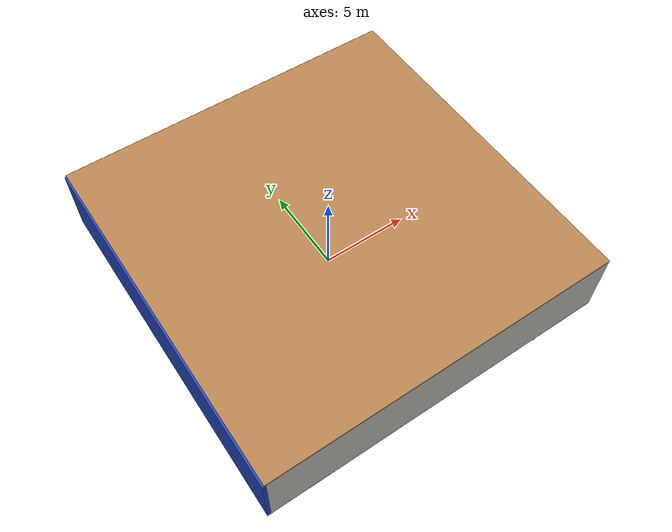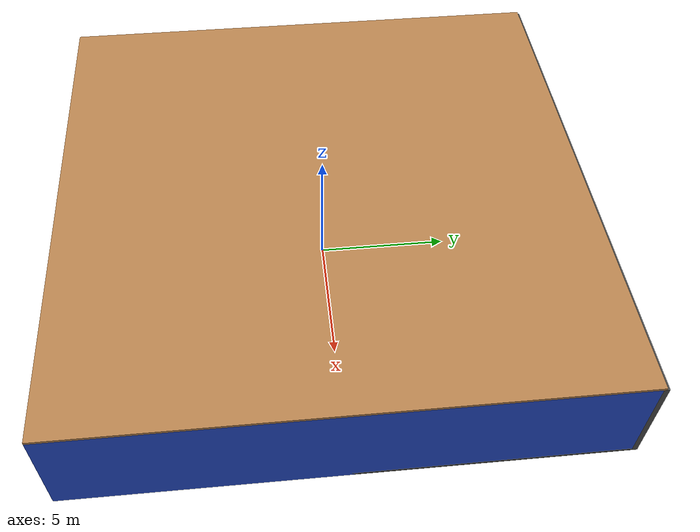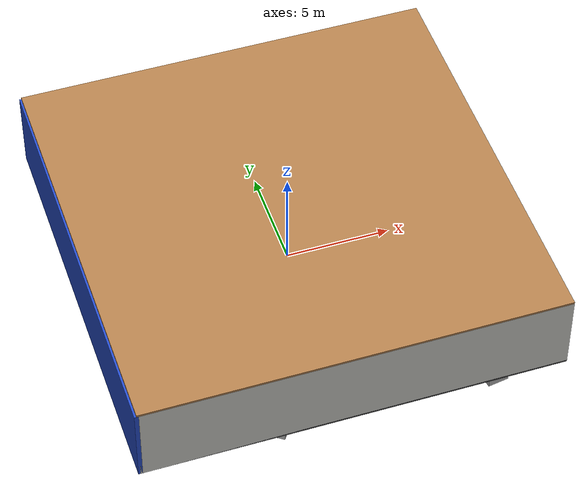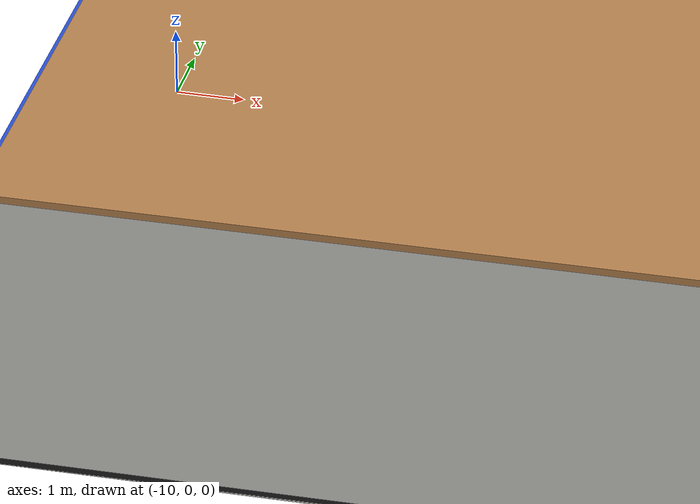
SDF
<sdf version="1.4">
 <world name="default">
  <physics type="ode">
   <max_step_size>0.001</max_step_size>
   <real_time_factor>1</real_time_factor>
   <real_time_update_rate>1000</real_time_update_rate>
   <gravity>0 0 -9.8</gravity>
  </physics>
  <scene><ambient>0.4 0.4 0.4 1</ambient><background>0.7 0.7 0.7 1</background><shadows>1</shadows></scene>
  <model name="Surrounding">
   <static>1</static>
   <link name="Ceiling">
    <collision name="Ceiling_Collision"><geometry><box><size>20 20 0.1</size></box></geometry></collision>
    <visual name="Ceiling_Visual">
     <geometry><box><size>20 20 0.1</size></box></geometry>
     <material>
      <script><uri>file://media/materials/scripts/gazebo.material</uri><name>Gazebo/Wood</name></script>
     </material>
    </visual>
    <pose>0 0 4.05 0 0 0</pose>
   </link>
   <link name="Wall_South">
    <collision name="Wall_South_Collision">
     <geometry><box><size>20 0 4</size></box></geometry>
     <pose>0 0 2 0 -0 0</pose>
    </collision>
    <visual name="Wall_South_Visual">
     <pose>0 0 2 0 -0 0</pose>
     <geometry><box><size>20 0 4</size></box></geometry>
     <material>
      <script><uri>file://media/materials/scripts/gazebo.material</uri><name>Gazebo/CeilingTiled</name></script>
     </material>
    </visual>
    <velocity_decay><linear>0</linear><angular>0</angular></velocity_decay>
    <pose>0 -10 0 0 -0 0</pose>
   </link>
   <link name="Wall_East">
    <collision name="Wall_21_Collision">
     <geometry><box><size>20 0 4</size></box></geometry>
     <pose>0 0 2 0 -0 0</pose>
    </collision>
    <visual name="Wall_21_Visual">
     <pose>0 0 2 0 -0 0</pose>
     <geometry><box><size>20 0 4</size></box></geometry>
     <material>
      <script><uri>file://media/materials/scripts/gazebo.material</uri><name>Gazebo/BlueLaser</name></script>
     </material>
    </visual>
    <velocity_decay><linear>0</linear><angular>0</angular></velocity_decay>
    <pose>10 0 0 0 -0 1.5708</pose>
   </link>
   <link name="Wall_North">
    <collision name="Wall_22_Collision">
     <geometry><box><size>20 0.2 4</size></box></geometry>
     <pose>0 0 2 0 -0 0</pose>
    </collision>
    <visual name="Wall_22_Visual">
     <pose>0 0 2 0 -0 0</pose>
     <geometry><box><size>20 0.2 4</size></box></geometry>
     <material>
      <script><uri>file://media/materials/scripts/gazebo.material</uri><name>Gazebo/DarkGrey</name></script>
     </material>
    </visual>
    <velocity_decay><linear>0</linear><angular>0</angular></velocity_decay>
    <pose>0 10 0 0 -0 0</pose>
   </link>
   <link name="Wall_West">
    <collision name="Wall_23_Collision">
     <geometry><box><size>20 0.2 4</size></box></geometry>
     <pose>0 0 2 0 -0 0</pose>
    </collision>
    <visual name="Wall_23_Visual">
     <pose>0 0 2 0 -0 0</pose>
     <geometry><box><size>20 0.2 4</size></box></geometry>
     <material>
      <script><uri>file://media/materials/scripts/gazebo.material</uri><name>Gazebo/BlueGlow</name></script>
     </material>
    </visual>
    <velocity_decay><linear>0</linear><angular>0</angular></velocity_decay>
    <pose>-10 0 0 0 0 -1.5708</pose>
   </link>
   <link name="Ground_link">
    <collision name="collision">
     <pose>0 0 .05 0 -0 0</pose>
     <geometry><box><size>20 20 0.1</size></box></geometry>
    </collision>
    <visual name="visual">
     <pose>0 0 .05 0 -0 0</pose>
     <geometry><box><size>20 20 0.1</size></box></geometry>
     <material>
      <script><uri>file://media/materials/scripts/gazebo.material</uri><name>Gazebo/Black</name></script>
     </material>
    </visual>
   </link>
   <static>1</static>
  </model>
  <spherical_coordinates>
   <surface_model>EARTH_WGS84</surface_model>
   <latitude_deg>0</latitude_deg>
   <longitude_deg>0</longitude_deg>
   <elevation>0</elevation>
   <heading_deg>0</heading_deg>
  </spherical_coordinates>
  <light name="lightball_0" type="diffuse">
   <diffuse>0.8 0.8 0.8 1</diffuse>
   <specular>0.2 0.2 0.2 1</specular>
   <attenuation>
    <range>100</range>
    <constant>0.7</constant>
    <linear>0.01</linear>
    <quadratic>0.001</quadratic>
   </attenuation>
   <direction>-0.5 0.1 -0.9</direction>
   <pose>8.29386691217 4.37489185133 1.13629039176 0 0 0</pose>
  </light>
  <light name="lightball_1" type="diffuse">
   <diffuse>0.8 0.8 0.8 1</diffuse>
   <specular>0.2 0.2 0.2 1</specular>
   <attenuation>
    <range>100</range>
    <constant>0.7</constant>
    <linear>0.01</linear>
    <quadratic>0.001</quadratic>
   </attenuation>
   <direction>-0.5 0.1 -0.9</direction>
   <pose>-6.36479457825 9.16919219252 3.82519928825 0 0 0</pose>
  </light>
  <light name="lightball_2" type="diffuse">
   <diffuse>0.8 0.8 0.8 1</diffuse>
   <specular>0.2 0.2 0.2 1</specular>
   <attenuation>
    <range>100</range>
    <constant>0.7</constant>
    <linear>0.01</linear>
    <quadratic>0.001</quadratic>
   </attenuation>
   <direction>-0.5 0.1 -0.9</direction>
   <pose>7.76865479526 5.24415996833 3.71833451613 0 0 0</pose>
  </light>
  <light name="lightball_3" type="diffuse">
   <diffuse>0.8 0.8 0.8 1</diffuse>
   <specular>0.2 0.2 0.2 1</specular>
   <attenuation>
    <range>100</range>
    <constant>0.7</constant>
    <linear>0.01</linear>
    <quadratic>0.001</quadratic>
   </attenuation>
   <direction>-0.5 0.1 -0.9</direction>
   <pose>-1.41803783989 3.21400916785 2.90524240765 0 0 0</pose>
  </light>
  <light name="lightball_4" type="diffuse">
   <diffuse>0.8 0.8 0.8 1</diffuse>
   <specular>0.2 0.2 0.2 1</specular>
   <attenuation>
    <range>100</range>
    <constant>0.7</constant>
    <linear>0.01</linear>
    <quadratic>0.001</quadratic>
   </attenuation>
   <direction>-0.5 0.1 -0.9</direction>
   <pose>5.73926135558 -1.79189335026 2.66555149345 0 0 0</pose>
  </light>
  <light name="lightball_5" type="diffuse">
   <diffuse>0.8 0.8 0.8 1</diffuse>
   <specular>0.2 0.2 0.2 1</specular>
   <attenuation>
    <range>100</range>
    <constant>0.7</constant>
    <linear>0.01</linear>
    <quadratic>0.001</quadratic>
   </attenuation>
   <direction>-0.5 0.1 -0.9</direction>
   <pose>5.61776139374 -0.101992346939 2.0864140706 0 0 0</pose>
  </light>
  <light name="lightball_6" type="diffuse">
   <diffuse>0.8 0.8 0.8 1</diffuse>
   <specular>0.2 0.2 0.2 1</specular>
   <attenuation>
    <range>100</range>
    <constant>0.7</constant>
    <linear>0.01</linear>
    <quadratic>0.001</quadratic>
   </attenuation>
   <direction>-0.5 0.1 -0.9</direction>
   <pose>6.19798947887 -0.411316331856 2.60532863943 0 0 0</pose>
  </light>
  <light name="lightball_7" type="diffuse">
   <diffuse>0.8 0.8 0.8 1</diffuse>
   <specular>0.2 0.2 0.2 1</specular>
   <attenuation>
    <range>100</range>
    <constant>0.7</constant>
    <linear>0.01</linear>
    <quadratic>0.001</quadratic>
   </attenuation>
   <direction>-0.5 0.1 -0.9</direction>
   <pose>5.55683549456 -8.3839698405 2.82917284711 0 0 0</pose>
  </light>
  <light name="lightball_8" type="diffuse">
   <diffuse>0.8 0.8 0.8 1</diffuse>
   <specular>0.2 0.2 0.2 1</specular>
   <attenuation>
    <range>100</range>
    <constant>0.7</constant>
    <linear>0.01</linear>
    <quadratic>0.001</quadratic>
   </attenuation>
   <direction>-0.5 0.1 -0.9</direction>
   <pose>4.04378483811 5.44027266101 3.31891166438 0 0 0</pose>
  </light>
  <light name="lightball_9" type="diffuse">
   <diffuse>0.8 0.8 0.8 1</diffuse>
   <specular>0.2 0.2 0.2 1</specular>
   <attenuation>
    <range>100</range>
    <constant>0.7</constant>
    <linear>0.01</linear>
    <quadratic>0.001</quadratic>
   </attenuation>
   <direction>-0.5 0.1 -0.9</direction>
   <pose>-2.27670796347 -3.54335200938 2.38048288137 0 0 0</pose>
  </light>
  <include>
   <uri>model://textured_shapes</uri>
   <pose>-6.45345598557 -3.49930089457 0 0 0 1.38513253821</pose>
  </include>
  <include>
   <uri>model://textured_shapes</uri>
   <pose>-4.71208165474 -8.31353315336 0 0 0 0.966376382366</pose>
  </include>
  <include>
   <uri>model://construction_cone</uri>
   <pose>-3.77005460144 -3.590834838 0 0 0 0.893043671115</pose>
  </include>
  <include><uri>model://cabinet</uri><pose>4.83825468834 -5.06929901863 0 0 0 1.17641573727</pose></include>
  <include>
   <uri>model://textured_shapes</uri>
   <pose>6.48413511222 -7.84274557312 0 0 0 0.15334509412</pose>
  </include>
  <include><uri>model://table</uri><pose>7.14810992568 4.87662424691 0 0 0 0.326421853364</pose></include>
 </world>
</sdf>

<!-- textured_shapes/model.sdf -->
<sdf version="1.6">
  <model name="textured_shapes">
    <pose>0 0 0.5 0 0 0</pose>
    <link name="box">
      <pose>0 -1.5 0 0 0 0</pose>
      <collision name="collision">
        <geometry>
          <box>
            <size>1 1 1</size>
          </box>
        </geometry>
      </collision>
      <visual name="visual">
        <geometry>
          <box>
            <size>1 1 1</size>
          </box>
        </geometry>
        <material>
          <script>
            <uri>model://../model_source/models/textured_shapes/materials/scripts</uri>
            <uri>model://../model_source/models/textured_shapes/materials/textures</uri>
            <name>TexturedShape/Squares</name>
          </script>
        </material>
      </visual>
    </link>
    <link name="sphere">
      <collision name="collision">
        <geometry>
          <sphere>
            <radius>0.5</radius>
          </sphere>
        </geometry>
      </collision>
      <visual name="visual">
        <geometry>
          <sphere>
            <radius>0.5</radius>
          </sphere>
        </geometry>
        <material>
          <script>
            <uri>model://../model_source/models/textured_shapes/materials/scripts</uri>
            <uri>model://../model_source/models/textured_shapes/materials/textures</uri>
            <name>TexturedShape/Squares</name>
          </script>
        </material>
      </visual>
    </link>
    <link name="cylinder">
      <pose>0 1.5 0 0 0 0</pose>
      <collision name="collision">
        <geometry>
          <cylinder>
            <radius>0.5</radius>
            <length>1</length>
          </cylinder>
        </geometry>
      </collision>
      <visual name="visual">
        <geometry>
          <cylinder>
            <radius>0.5</radius>
            <length>1</length>
          </cylinder>
        </geometry>
        <material>
          <script>
            <uri>model://../model_source/models/textured_shapes/materials/scripts</uri>
            <uri>model://../model_source/models/textured_shapes/materials/textures</uri>
            <name>TexturedShape/Squares</name>
          </script>
        </material>
      </visual>
    </link>
  </model>
</sdf>

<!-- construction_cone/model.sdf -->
<sdf version="1.5">
  <model name="Construction Cone">
    <link name="link">
      <collision name="collision">
        <geometry>
          <mesh>
            <scale>10 10 10</scale>
            <uri>file://isr-testbed/construction_cone/meshes/construction_cone.dae</uri>
          </mesh>
        </geometry>
      </collision>
      <visual name="visual">
        <geometry>
          <mesh>
            <scale>10 10 10</scale>
            <uri>file://isr-testbed/construction_cone/meshes/construction_cone.dae</uri>
          </mesh>
        </geometry>
      </visual>
    </link>
  </model>
</sdf>

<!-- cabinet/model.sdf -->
<sdf version="1.5">
  <model name="cabinet">
    <static>true</static>
    <link name="cabinet_bottom_plate">
      <inertial>
        <pose>0 0 -1 0 0 0</pose>
        <inertia>
          <ixx>2.050000</ixx>
          <ixy>0</ixy>
          <ixz>0</ixz>
          <iyy>2.050000</iyy>
          <iyz>0</iyz>
          <izz>2.050000</izz>
        </inertia>
        <mass>25.000000</mass>
      </inertial>
      <collision name="cabinet_bottom_plate_geom">
        <pose>0 0 0.010000 0 0 0</pose>
        <geometry>
          <box>
            <size>0.450000 0.450000 0.020000</size>
          </box>
        </geometry>
      </collision>
      <visual name="cabinet_bottom_plate_geom_visual">
        <pose>0 0 0.010000 0 0 0</pose>
        <geometry>
          <box>
            <size>0.450000 0.450000 0.020000</size>
          </box>
        </geometry>
        <material>
          <script>
            <uri>model://media/materials/scripts/gazebo.material</uri>
            <name>Gazebo/Wood</name>
          </script>
        </material>
      </visual>
      <collision name="cabinet_bottom_plate_geom_cabinet_back_plate">
        <pose>0.235000 0 0.510000 0 0 0</pose>
        <geometry>
          <box>
            <size>0.020000 0.450000 1.020000</size>
          </box>
        </geometry>
      </collision>
      <visual name="cabinet_bottom_plate_geom_cabinet_back_plate_visual">
        <pose>0.235000 0 0.510000 0 0 0</pose>
        <geometry>
          <box>
            <size>0.020000 0.450000 1.020000</size>
          </box>
        </geometry>
        <material>
          <script>
            <uri>model://media/materials/scripts/gazebo.material</uri>
            <name>Gazebo/Wood</name>
          </script>
        </material>
      </visual>
      <collision name="cabinet_bottom_plate_geom_cabinet_left_plate">
        <pose>0 0.235000 0.510000 0 0 0</pose>
        <geometry>
          <box>
            <size>0.450000 0.020000 1.020000</size>
          </box>
        </geometry>
      </collision>
      <visual name="cabinet_bottom_plate_geom_cabinet_left_plate_visual">
        <pose>0 0.235000 0.510000 0 0 0</pose>
        <geometry>
          <box>
            <size>0.450000 0.020000 1.020000</size>
          </box>
        </geometry>
        <material>
          <script>
            <uri>model://media/materials/scripts/gazebo.material</uri>
            <name>Gazebo/Wood</name>
          </script>
        </material>
      </visual>
      <collision name="cabinet_bottom_plate_geom_cabinet_middle_plate">
        <pose>0 0 0.510000 0 0 0</pose>
        <geometry>
          <box>
            <size>0.450000 0.450000 0.020000</size>
          </box>
        </geometry>
      </collision>
      <visual name="cabinet_bottom_plate_geom_cabinet_middle_plate_visual">
        <pose>0 0 0.510000 0 0 0</pose>
        <geometry>
          <box>
            <size>0.450000 0.450000 0.020000</size>
          </box>
        </geometry>
        <material>
          <script>
            <uri>model://media/materials/scripts/gazebo.material</uri>
            <name>Gazebo/Wood</name>
          </script>
        </material>
      </visual>
      <collision name="cabinet_bottom_plate_geom_cabinet_right_plate">
        <pose>0 -0.235000 0.510000 0 0 0</pose>
        <geometry>
          <box>
            <size>0.450000 0.020000 1.020000</size>
          </box>
        </geometry>
      </collision>
      <visual name="cabinet_bottom_plate_geom_cabinet_right_plate_visual">
        <pose>0 -0.235000 0.510000 0 0 0</pose>
        <geometry>
          <box>
            <size>0.450000 0.020000 1.020000</size>
          </box>
        </geometry>
        <material>
          <script>
            <uri>model://media/materials/scripts/gazebo.material</uri>
            <name>Gazebo/Wood</name>
          </script>
        </material>
      </visual>
      <collision name="cabinet_bottom_plate_geom_cabinet_top_plate">
        <pose>0 0 1.010000 0 0 0</pose>
        <geometry>
          <box>
            <size>0.450000 0.450000 0.020000</size>
          </box>
        </geometry>
      </collision>
      <visual name="cabinet_bottom_plate_geom_cabinet_top_plate_visual">
        <pose>0 0 1.010000 0 0 0</pose>
        <geometry>
          <box>
            <size>0.450000 0.450000 0.020000</size>
          </box>
        </geometry>
        <material>
          <script>
            <uri>model://media/materials/scripts/gazebo.material</uri>
            <name>Gazebo/Wood</name>
          </script>
        </material>
      </visual>
    </link>
  </model>
</sdf>

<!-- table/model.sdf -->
<sdf version="1.5">
  <model name="table">
    <static>true</static>
    <link name="link">
      <collision name="surface">
        <pose>0 0 1.0 0 0 0</pose>
        <geometry>
          <box>
            <size>1.5 0.8 0.03</size>
          </box>
        </geometry>
        <surface>
          <friction>
            <ode>
              <mu>0.6</mu>
              <mu2>0.6</mu2>
            </ode>
          </friction>
        </surface>
      </collision>
      <visual name="visual1">
        <pose>0 0 1.0 0 0 0</pose>
        <geometry>
          <box>
            <size>1.5 0.8 0.03</size>
          </box>
        </geometry>
        <material>
          <script>
            <uri>model://media/materials/scripts/gazebo.material</uri>
            <name>Gazebo/Wood</name>
          </script>
        </material>
      </visual>
      <collision name="front_left_leg">
        <pose>0.68 0.38 0.5 0 0 0</pose>
        <geometry>
          <cylinder>
            <radius>0.02</radius>
            <length>1.0</length>
          </cylinder>
        </geometry>
      </collision>
      <visual name="front_left_leg">
        <pose>0.68 0.38 0.5 0 0 0</pose>
        <geometry>
          <cylinder>
            <radius>0.02</radius>
            <length>1.0</length>
          </cylinder>
        </geometry>
        <material>
          <script>
            <uri>model://media/materials/scripts/gazebo.material</uri>
            <name>Gazebo/Grey</name>
          </script>
        </material>
      </visual>
      <collision name="front_right_leg">
        <pose>0.68 -0.38 0.5 0 0 0</pose>
        <geometry>
          <cylinder>
            <radius>0.02</radius>
            <length>1.0</length>
          </cylinder>
        </geometry>
      </collision>
      <visual name="front_right_leg">
        <pose>0.68 -0.38 0.5 0 0 0</pose>
        <geometry>
          <cylinder>
            <radius>0.02</radius>
            <length>1.0</length>
          </cylinder>
        </geometry>
        <material>
          <script>
            <uri>model://media/materials/scripts/gazebo.material</uri>
            <name>Gazebo/Grey</name>
          </script>
        </material>
      </visual>
      <collision name="back_right_leg">
        <pose>-0.68 -0.38 0.5 0 0 0</pose>
        <geometry>
          <cylinder>
            <radius>0.02</radius>
            <length>1.0</length>
          </cylinder>
        </geometry>
      </collision>
      <visual name="back_right_leg">
        <pose>-0.68 -0.38 0.5 0 0 0</pose>
        <geometry>
          <cylinder>
            <radius>0.02</radius>
            <length>1.0</length>
          </cylinder>
        </geometry>
        <material>
          <script>
            <uri>model://media/materials/scripts/gazebo.material</uri>
            <name>Gazebo/Grey</name>
          </script>
        </material>
      </visual>
      <collision name="back_left_leg">
        <pose>-0.68 0.38 0.5 0 0 0</pose>
        <geometry>
          <cylinder>
            <radius>0.02</radius>
            <length>1.0</length>
          </cylinder>
        </geometry>
      </collision>
      <visual name="back_left_leg">
        <pose>-0.68 0.38 0.5 0 0 0</pose>
        <geometry>
          <cylinder>
            <radius>0.02</radius>
            <length>1.0</length>
          </cylinder>
        </geometry>
        <material>
          <script>
            <uri>model://media/materials/scripts/gazebo.material</uri>
            <name>Gazebo/Grey</name>
          </script>
        </material>
      </visual>
    </link>
  </model>
</sdf>
